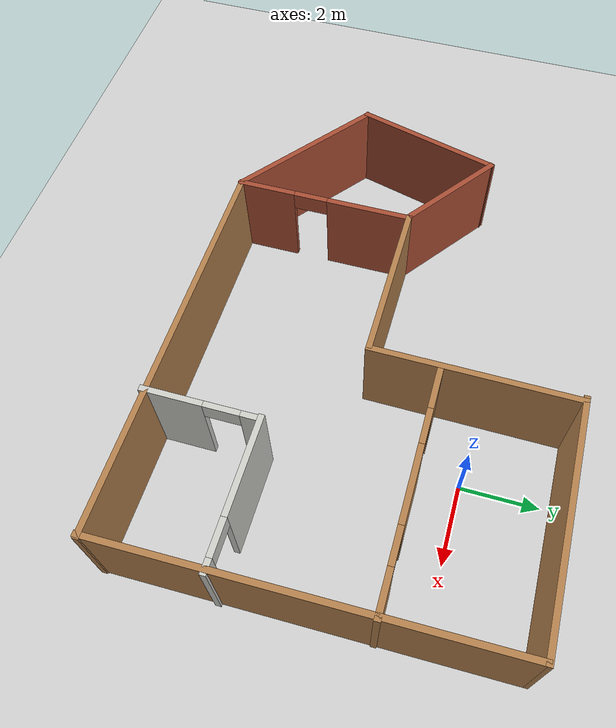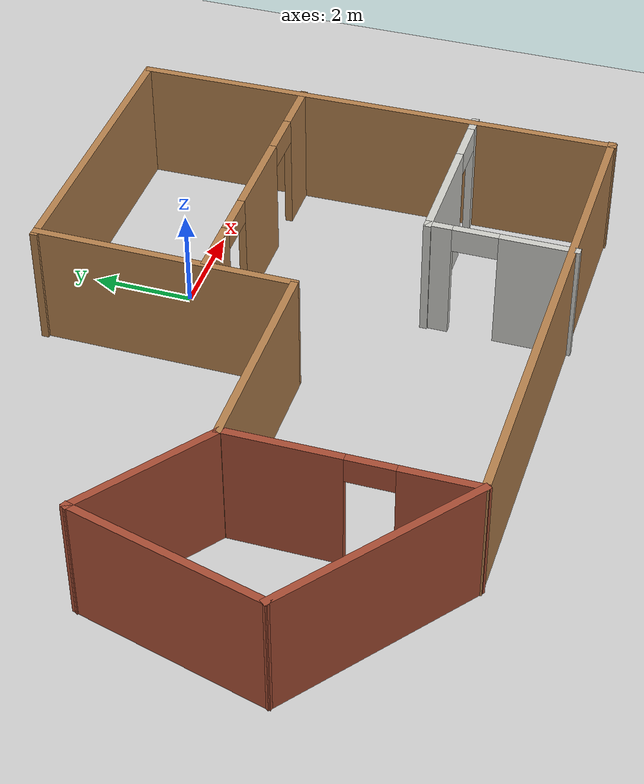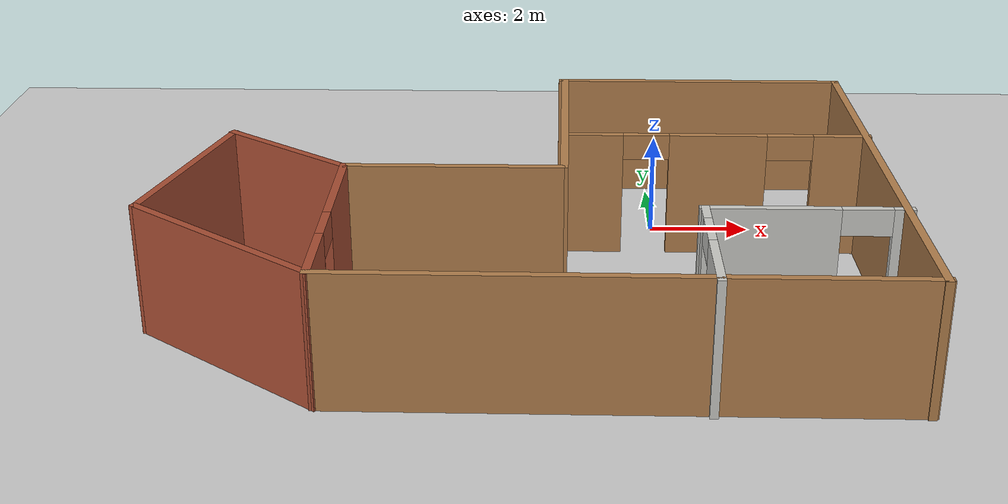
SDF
<sdf version="1.6">
 <world name="default">
  <light name="sun" type="directional">
   <pose>0 0 15 0 -0 0</pose>
   <diffuse>1 1 1 1</diffuse>
   <specular>0.1 0.1 0.1 1</specular>
   <attenuation>
    <range>1000</range>
    <constant>0.9</constant>
    <linear>0.01</linear>
    <quadratic>0.001</quadratic>
   </attenuation>
   <direction>-0.5 0.5 -1</direction>
  </light>
  <model name="ground_plane">
   <static>1</static>
   <link name="link">
    <collision name="collision">
     <geometry><plane><normal>0 0 1</normal><size>100 100</size></plane></geometry>
     <surface><friction><ode><mu>100</mu><mu2>50</mu2></ode></friction></surface>
    </collision>
    <visual name="visual">
     <transparency>1</transparency>
     <cast_shadows>0</cast_shadows>
     <geometry><plane><normal>0 0 1</normal><size>100 100</size></plane></geometry>
     <material>
      <script><uri>file://media/materials/scripts/gazebo.material</uri><name>Gazebo/Grey</name></script>
     </material>
    </visual>
   </link>
  </model>
  <gravity>0 0 -9.8</gravity>
  <magnetic_field>6e-06 2.3e-05 -4.2e-05</magnetic_field>
  <atmosphere type="adiabatic"/>
  <physics name="default_physics" default="0" type="ode">
   <max_step_size>0.001</max_step_size>
   <real_time_factor>1</real_time_factor>
   <real_time_update_rate>1000</real_time_update_rate>
  </physics>
  <scene><ambient>0.4 0.4 0.4 1</ambient><background>0.7 0.7 0.7 1</background><shadows>1</shadows></scene>
  <spherical_coordinates>
   <surface_model>EARTH_WGS84</surface_model>
   <latitude_deg>0</latitude_deg>
   <longitude_deg>0</longitude_deg>
   <elevation>0</elevation>
   <heading_deg>0</heading_deg>
  </spherical_coordinates>
  <model name="simple_house">
   <pose>-2.59154 -2.62388 0 0 -0 0</pose>
   <link name="Wall_10">
    <collision name="Wall_10_Collision">
     <geometry><box><size>4.4264 0.15 2.5</size></box></geometry>
     <pose>0 0 1.25 0 -0 0</pose>
    </collision>
    <visual name="Wall_10_Visual">
     <pose>0 0 1.25 0 -0 0</pose>
     <geometry><box><size>4.4264 0.15 2.5</size></box></geometry>
     <material>
      <script><uri>file://media/materials/scripts/gazebo.material</uri><name>Gazebo/Bricks</name></script>
      <ambient>1 1 1 1</ambient>
     </material>
    </visual>
    <pose>-5.04606 -3.49864 0 0 0 -0.655202</pose>
   </link>
   <link name="Wall_14">
    <pose>3.19897 -3.4846 0 0 -0 1.5708</pose>
    <visual name="Wall_14_Visual_0">
     <pose>-0.725289 0 1.25 0 -0 0</pose>
     <geometry><box><size>1.54942 0.15 2.5</size></box></geometry>
     <material>
      <script><uri>file://media/materials/scripts/gazebo.material</uri><name>Gazebo/CeilingTiled</name></script>
      <ambient>1 1 1 1</ambient>
     </material>
    </visual>
    <collision name="Wall_14_Collision_0">
     <geometry><box><size>1.54942 0.15 2.5</size></box></geometry>
     <pose>-0.725289 0 1.25 0 -0 0</pose>
    </collision>
    <visual name="Wall_14_Visual_1">
     <pose>1.22471 0 1.25 0 -0 0</pose>
     <geometry><box><size>0.550578 0.15 2.5</size></box></geometry>
     <material>
      <script><uri>file://media/materials/scripts/gazebo.material</uri><name>Gazebo/CeilingTiled</name></script>
      <ambient>1 1 1 1</ambient>
     </material>
    </visual>
    <collision name="Wall_14_Collision_1">
     <geometry><box><size>0.550578 0.15 2.5</size></box></geometry>
     <pose>1.22471 0 1.25 0 -0 0</pose>
    </collision>
    <visual name="Wall_14_Visual_2">
     <pose>0.499422 0 2.25 0 -0 0</pose>
     <geometry><box><size>0.9 0.15 0.5</size></box></geometry>
     <material>
      <script><uri>file://media/materials/scripts/gazebo.material</uri><name>Gazebo/CeilingTiled</name></script>
      <ambient>1 1 1 1</ambient>
     </material>
    </visual>
    <collision name="Wall_14_Collision_2">
     <geometry><box><size>0.9 0.15 0.5</size></box></geometry>
     <pose>0.499422 0 2.25 0 -0 0</pose>
    </collision>
   </link>
   <link name="Wall_15">
    <pose>4.96838 -2.05959 0 0 -0 0</pose>
    <visual name="Wall_15_Visual_0">
     <pose>-0.639389 0 1.25 0 -0 0</pose>
     <geometry><box><size>2.47122 0.15 2.5</size></box></geometry>
     <material>
      <script><uri>file://media/materials/scripts/gazebo.material</uri><name>Gazebo/CeilingTiled</name></script>
      <ambient>1 1 1 1</ambient>
     </material>
    </visual>
    <collision name="Wall_15_Collision_0">
     <geometry><box><size>2.47122 0.15 2.5</size></box></geometry>
     <pose>-0.639389 0 1.25 0 -0 0</pose>
    </collision>
    <visual name="Wall_15_Visual_1">
     <pose>1.68561 0 1.25 0 -0 0</pose>
     <geometry><box><size>0.378779 0.15 2.5</size></box></geometry>
     <material>
      <script><uri>file://media/materials/scripts/gazebo.material</uri><name>Gazebo/CeilingTiled</name></script>
      <ambient>1 1 1 1</ambient>
     </material>
    </visual>
    <collision name="Wall_15_Collision_1">
     <geometry><box><size>0.378779 0.15 2.5</size></box></geometry>
     <pose>1.68561 0 1.25 0 -0 0</pose>
    </collision>
    <visual name="Wall_15_Visual_2">
     <pose>1.04622 0 2.25 0 -0 0</pose>
     <geometry><box><size>0.9 0.15 0.5</size></box></geometry>
     <material>
      <script><uri>file://media/materials/scripts/gazebo.material</uri><name>Gazebo/CeilingTiled</name></script>
      <ambient>1 1 1 1</ambient>
     </material>
    </visual>
    <collision name="Wall_15_Collision_2">
     <geometry><box><size>0.9 0.15 0.5</size></box></geometry>
     <pose>1.04622 0 2.25 0 -0 0</pose>
    </collision>
   </link>
   <link name="Wall_17">
    <pose>-3.35063 -2.50149 0 0 0 -1.5708</pose>
    <visual name="Wall_17_Visual_0">
     <pose>-1.23182 0 1.25 0 -0 0</pose>
     <geometry><box><size>2.28637 0.15 2.5</size></box></geometry>
     <material>
      <script><uri>file://media/materials/scripts/gazebo.material</uri><name>Gazebo/Bricks</name></script>
      <ambient>1 1 1 1</ambient>
     </material>
    </visual>
    <collision name="Wall_17_Collision_0">
     <geometry><box><size>2.28637 0.15 2.5</size></box></geometry>
     <pose>-1.23182 0 1.25 0 -0 0</pose>
    </collision>
    <visual name="Wall_17_Visual_1">
     <pose>1.59319 0 1.25 0 -0 0</pose>
     <geometry><box><size>1.56363 0.15 2.5</size></box></geometry>
     <material>
      <script><uri>file://media/materials/scripts/gazebo.material</uri><name>Gazebo/Bricks</name></script>
      <ambient>1 1 1 1</ambient>
     </material>
    </visual>
    <collision name="Wall_17_Collision_1">
     <geometry><box><size>1.56363 0.15 2.5</size></box></geometry>
     <pose>1.59319 0 1.25 0 -0 0</pose>
    </collision>
    <visual name="Wall_17_Visual_2">
     <pose>0.361369 0 2.25 0 -0 0</pose>
     <geometry><box><size>0.9 0.15 0.5</size></box></geometry>
     <material>
      <script><uri>file://media/materials/scripts/gazebo.material</uri><name>Gazebo/Bricks</name></script>
      <ambient>1 1 1 1</ambient>
     </material>
    </visual>
    <collision name="Wall_17_Collision_2">
     <geometry><box><size>0.9 0.15 0.5</size></box></geometry>
     <pose>0.361369 0 2.25 0 -0 0</pose>
    </collision>
   </link>
   <link name="Wall_19">
    <pose>3.76527 1.54614 0 0 -0 0</pose>
    <visual name="Wall_19_Visual_0">
     <pose>-2.42274 0 1.25 0 -0 0</pose>
     <geometry><box><size>1.15451 0.15 2.5</size></box></geometry>
     <material>
      <script><uri>file://media/materials/scripts/gazebo.material</uri><name>Gazebo/Wood</name></script>
      <ambient>1 1 1 1</ambient>
     </material>
    </visual>
    <collision name="Wall_19_Collision_0">
     <geometry><box><size>1.15451 0.15 2.5</size></box></geometry>
     <pose>-2.42274 0 1.25 0 -0 0</pose>
    </collision>
    <visual name="Wall_19_Visual_1">
     <pose>0.011662 0 1.25 0 -0 0</pose>
     <geometry><box><size>1.9143 0.15 2.5</size></box></geometry>
     <material>
      <script><uri>file://media/materials/scripts/gazebo.material</uri><name>Gazebo/Wood</name></script>
      <ambient>1 1 1 1</ambient>
     </material>
    </visual>
    <collision name="Wall_19_Collision_1">
     <geometry><box><size>1.9143 0.15 2.5</size></box></geometry>
     <pose>0.011662 0 1.25 0 -0 0</pose>
    </collision>
    <visual name="Wall_19_Visual_2">
     <pose>2.43441 0 1.25 0 -0 0</pose>
     <geometry><box><size>1.13119 0.15 2.5</size></box></geometry>
     <material>
      <script><uri>file://media/materials/scripts/gazebo.material</uri><name>Gazebo/Wood</name></script>
      <ambient>1 1 1 1</ambient>
     </material>
    </visual>
    <collision name="Wall_19_Collision_2">
     <geometry><box><size>1.13119 0.15 2.5</size></box></geometry>
     <pose>2.43441 0 1.25 0 -0 0</pose>
    </collision>
    <visual name="Wall_19_Visual_3">
     <pose>-1.39549 0 2.25 0 -0 0</pose>
     <geometry><box><size>0.9 0.15 0.5</size></box></geometry>
     <material>
      <script><uri>file://media/materials/scripts/gazebo.material</uri><name>Gazebo/Wood</name></script>
      <ambient>1 1 1 1</ambient>
     </material>
    </visual>
    <collision name="Wall_19_Collision_3">
     <geometry><box><size>0.9 0.15 0.5</size></box></geometry>
     <pose>-1.39549 0 2.25 0 -0 0</pose>
    </collision>
    <visual name="Wall_19_Visual_4">
     <pose>1.41881 0 2.25 0 -0 0</pose>
     <geometry><box><size>0.9 0.15 0.5</size></box></geometry>
     <material>
      <script><uri>file://media/materials/scripts/gazebo.material</uri><name>Gazebo/Wood</name></script>
      <ambient>1 1 1 1</ambient>
     </material>
    </visual>
    <collision name="Wall_19_Collision_4">
     <geometry><box><size>0.9 0.15 0.5</size></box></geometry>
     <pose>1.41881 0 2.25 0 -0 0</pose>
    </collision>
   </link>
   <link name="Wall_3">
    <collision name="Wall_3_Collision">
     <geometry><box><size>10.272 0.15 2.5</size></box></geometry>
     <pose>0 0 1.25 0 -0 0</pose>
    </collision>
    <visual name="Wall_3_Visual">
     <pose>0 0 1.25 0 -0 0</pose>
     <geometry><box><size>10.272 0.15 2.5</size></box></geometry>
     <material>
      <script><uri>file://media/materials/scripts/gazebo.material</uri><name>Gazebo/Wood</name></script>
      <ambient>1 1 1 1</ambient>
     </material>
    </visual>
    <pose>1.71032 -4.82796 0 0 0 -0.005231</pose>
   </link>
   <link name="Wall_4">
    <collision name="Wall_4_Collision">
     <geometry><box><size>9.91427 0.15 2.5</size></box></geometry>
     <pose>0 0 1.25 0 -0 0</pose>
    </collision>
    <visual name="Wall_4_Visual">
     <pose>0 0 1.25 0 -0 0</pose>
     <geometry><box><size>9.91427 0.15 2.5</size></box></geometry>
     <material>
      <script><uri>file://media/materials/scripts/gazebo.material</uri><name>Gazebo/Wood</name></script>
      <ambient>1 1 1 1</ambient>
     </material>
    </visual>
    <pose>6.6795 -0.003273 0 0 -0 1.58333</pose>
   </link>
   <link name="Wall_5">
    <collision name="Wall_5_Collision">
     <geometry><box><size>6.04007 0.15 2.5</size></box></geometry>
     <pose>0 0 1.25 0 -0 0</pose>
    </collision>
    <visual name="Wall_5_Visual">
     <pose>0 0 1.25 0 -0 0</pose>
     <geometry><box><size>6.04007 0.15 2.5</size></box></geometry>
     <material>
      <script><uri>file://media/materials/scripts/gazebo.material</uri><name>Gazebo/Wood</name></script>
      <ambient>1 1 1 1</ambient>
     </material>
    </visual>
    <pose>3.67329 4.90907 0 0 -0 3.14159</pose>
   </link>
   <link name="Wall_6">
    <collision name="Wall_6_Collision">
     <geometry><box><size>5.26068 0.15 2.5</size></box></geometry>
     <pose>0 0 1.25 0 -0 0</pose>
    </collision>
    <visual name="Wall_6_Visual">
     <pose>0 0 1.25 0 -0 0</pose>
     <geometry><box><size>5.26068 0.15 2.5</size></box></geometry>
     <material>
      <script><uri>file://media/materials/scripts/gazebo.material</uri><name>Gazebo/Wood</name></script>
      <ambient>1 1 1 1</ambient>
     </material>
    </visual>
    <pose>0.7715 2.35379 0 0 0 -1.57781</pose>
   </link>
   <link name="Wall_7">
    <collision name="Wall_7_Collision">
     <geometry><box><size>4.19302 0.15 2.5</size></box></geometry>
     <pose>0 0 1.25 0 -0 0</pose>
    </collision>
    <visual name="Wall_7_Visual">
     <pose>0 0 1.25 0 -0 0</pose>
     <geometry><box><size>4.19302 0.15 2.5</size></box></geometry>
     <material>
      <script><uri>file://media/materials/scripts/gazebo.material</uri><name>Gazebo/Wood</name></script>
      <ambient>1 1 1 1</ambient>
     </material>
    </visual>
    <pose>-1.32912 -0.201485 0 0 -0 3.14159</pose>
   </link>
   <link name="Wall_8">
    <collision name="Wall_8_Collision">
     <geometry><box><size>3.11876 0.15 2.5</size></box></geometry>
     <pose>0 0 1.25 0 -0 0</pose>
    </collision>
    <visual name="Wall_8_Visual">
     <pose>0 0 1.25 0 -0 0</pose>
     <geometry><box><size>3.11876 0.15 2.5</size></box></geometry>
     <material>
      <script><uri>file://media/materials/scripts/gazebo.material</uri><name>Gazebo/Bricks</name></script>
      <ambient>1 1 1 1</ambient>
     </material>
    </visual>
    <pose>-4.54784 0.645473 0 0 -0 2.50906</pose>
   </link>
   <link name="Wall_9">
    <collision name="Wall_9_Collision">
     <geometry><box><size>4 0.15 2.5</size></box></geometry>
     <pose>0 0 1.25 0 -0 0</pose>
    </collision>
    <visual name="Wall_9_Visual">
     <pose>0 0 1.25 0 -0 0</pose>
     <geometry><box><size>4 0.15 2.5</size></box></geometry>
     <material>
      <script><uri>file://media/materials/scripts/gazebo.material</uri><name>Gazebo/Bricks</name></script>
      <ambient>1 1 1 1</ambient>
     </material>
    </visual>
    <pose>-6.24327 -0.336385 0 0 0 -1.8326</pose>
   </link>
   <static>1</static>
  </model>
 </world>
</sdf>
